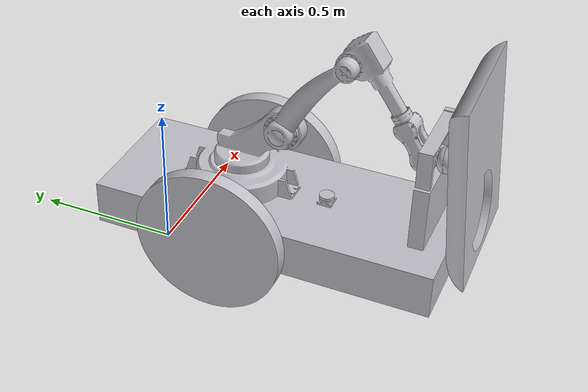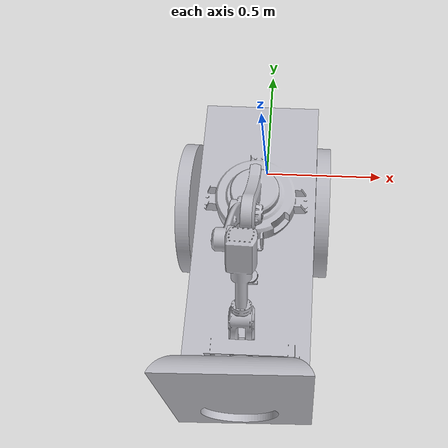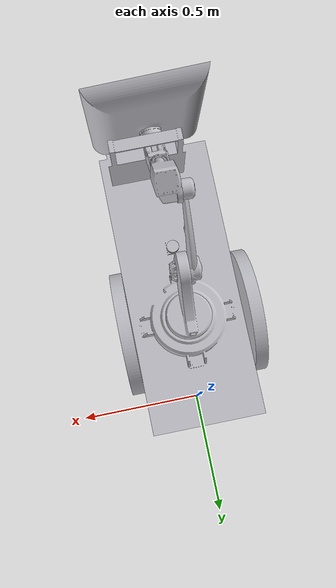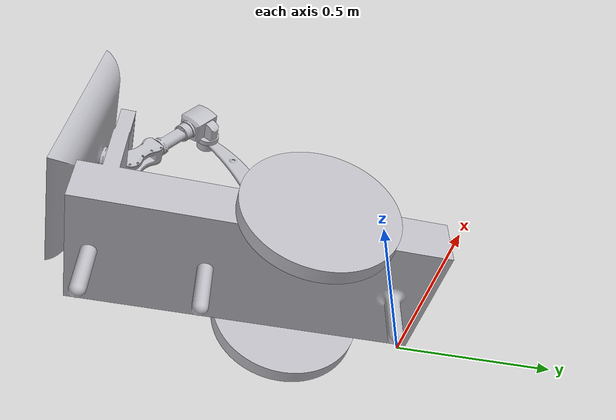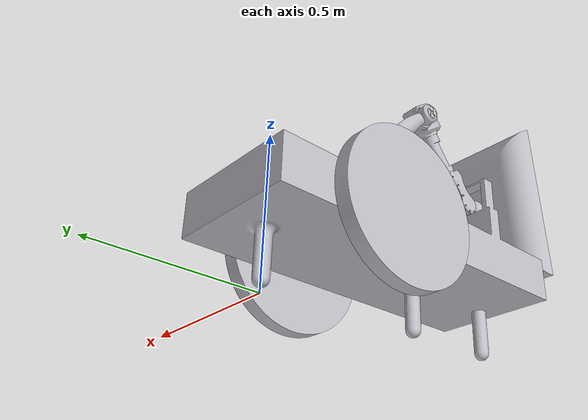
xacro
<?xml version="1.0" ?>
<robot name="Robotic" xmlns:xacro="http://www.ros.org/wiki/xacro">

<xacro:include filename="$(find Robotic_description)/urdf/materials.xacro" />
<xacro:include filename="$(find Robotic_description)/urdf/Robotic.trans" />
<xacro:include filename="$(find Robotic_description)/urdf/Robotic.gazebo" />
<link name="base_link">
  <inertial>
    <origin xyz="-0.007450355613238528 -0.4653602349973376 0.27586309139720855" rpy="0 0 0"/>
    <mass value="657.7876967232055"/>
    <inertia ixx="77.791713" iyy="13.429405" izz="85.67848" ixy="0.516986" iyz="2.23372" ixz="-0.199916"/>
  </inertial>
  <visual>
    <origin xyz="0 0 0" rpy="0 0 0"/>
    <geometry>
      <mesh filename="package://Robotic_description/meshes/base_link.stl" scale="0.001 0.001 0.001"/>
    </geometry>
    <material name="silver"/>
  </visual>
  <collision>
    <origin xyz="0 0 0" rpy="0 0 0"/>
    <geometry>
      <mesh filename="package://Robotic_description/meshes/base_link.stl" scale="0.001 0.001 0.001"/>
    </geometry>
  </collision>
</link>

<link name="hand_base_1">
  <inertial>
    <origin xyz="0.0010257516695020997 -0.05692153598390065 0.06290210488176279" rpy="0 0 0"/>
    <mass value="18.09836147401845"/>
    <inertia ixx="0.186656" iyy="0.093216" izz="0.127406" ixy="0.000853" iyz="0.071189" ixz="-0.001068"/>
  </inertial>
  <visual>
    <origin xyz="0.009269 0.297166 -0.446003" rpy="0 0 0"/>
    <geometry>
      <mesh filename="package://Robotic_description/meshes/hand_base_1.stl" scale="0.001 0.001 0.001"/>
    </geometry>
    <material name="silver"/>
  </visual>
  <collision>
    <origin xyz="0.009269 0.297166 -0.446003" rpy="0 0 0"/>
    <geometry>
      <mesh filename="package://Robotic_description/meshes/hand_base_1.stl" scale="0.001 0.001 0.001"/>
    </geometry>
  </collision>
</link>

<link name="arm1_1">
  <inertial>
    <origin xyz="-0.03758789593148462 -0.0737088482187292 0.1145706457365756" rpy="0 0 0"/>
    <mass value="6.899829498653839"/>
    <inertia ixx="0.134074" iyy="0.088007" izz="0.048106" ixy="-0.001112" iyz="0.060438" ixz="0.001108"/>
  </inertial>
  <visual>
    <origin xyz="0.013945 0.447093 -0.586003" rpy="0 0 0"/>
    <geometry>
      <mesh filename="package://Robotic_description/meshes/arm1_1.stl" scale="0.001 0.001 0.001"/>
    </geometry>
    <material name="silver"/>
  </visual>
  <collision>
    <origin xyz="0.013945 0.447093 -0.586003" rpy="0 0 0"/>
    <geometry>
      <mesh filename="package://Robotic_description/meshes/arm1_1.stl" scale="0.001 0.001 0.001"/>
    </geometry>
  </collision>
</link>

<link name="arm2_1">
  <inertial>
    <origin xyz="0.02340381159056437 -0.05299804220458271 -0.006510664663799903" rpy="0 0 0"/>
    <mass value="9.99270875492589"/>
    <inertia ixx="0.0514" iyy="0.034654" izz="0.027028" ixy="0.000569" iyz="-0.017218" ixz="-0.000493"/>
  </inertial>
  <visual>
    <origin xyz="0.020433 0.65511 -0.867405" rpy="0 0 0"/>
    <geometry>
      <mesh filename="package://Robotic_description/meshes/arm2_1.stl" scale="0.001 0.001 0.001"/>
    </geometry>
    <material name="silver"/>
  </visual>
  <collision>
    <origin xyz="0.020433 0.65511 -0.867405" rpy="0 0 0"/>
    <geometry>
      <mesh filename="package://Robotic_description/meshes/arm2_1.stl" scale="0.001 0.001 0.001"/>
    </geometry>
  </collision>
</link>

<link name="limb_1">
  <inertial>
    <origin xyz="-0.0017951382114320337 -0.05754333803716016 -0.0815636228719403" rpy="0 0 0"/>
    <mass value="4.896548707938915"/>
    <inertia ixx="0.015598" iyy="0.012813" izz="0.008678" ixy="-0.00015" iyz="-0.005806" ixz="-0.000136"/>
  </inertial>
  <visual>
    <origin xyz="-0.001751 0.80855 -0.729142" rpy="0 0 0"/>
    <geometry>
      <mesh filename="package://Robotic_description/meshes/limb_1.stl" scale="0.001 0.001 0.001"/>
    </geometry>
    <material name="silver"/>
  </visual>
  <collision>
    <origin xyz="-0.001751 0.80855 -0.729142" rpy="0 0 0"/>
    <geometry>
      <mesh filename="package://Robotic_description/meshes/limb_1.stl" scale="0.001 0.001 0.001"/>
    </geometry>
  </collision>
</link>

<link name="wrist_1">
  <inertial>
    <origin xyz="0.8805606266557462 0.2969658610954018 -0.4493313247733597" rpy="0 0 0"/>
    <mass value="123.51727145928325"/>
    <inertia ixx="3.192462" iyy="4.890144" izz="1.876446" ixy="-0.03157" iyz="-0.238187" ixz="0.01685"/>
  </inertial>
  <visual>
    <origin xyz="0.877584 1.337246 -1.070834" rpy="0 0 0"/>
    <geometry>
      <mesh filename="package://Robotic_description/meshes/wrist_1.stl" scale="0.001 0.001 0.001"/>
    </geometry>
    <material name="silver"/>
  </visual>
  <collision>
    <origin xyz="0.877584 1.337246 -1.070834" rpy="0 0 0"/>
    <geometry>
      <mesh filename="package://Robotic_description/meshes/wrist_1.stl" scale="0.001 0.001 0.001"/>
    </geometry>
  </collision>
</link>

<link name="right_wheel_1">
  <inertial>
    <origin xyz="-0.02499951052737509 -3.2177354841733674e-07 -1.7424353343509225e-07" rpy="0 0 0"/>
    <mass value="77.06719478337459"/>
    <inertia ixx="2.40835" iyy="1.220231" izz="1.220231" ixy="-0.0" iyz="-0.0" ixz="0.0"/>
  </inertial>
  <visual>
    <origin xyz="0.234269 0.297166 -0.267003" rpy="0 0 0"/>
    <geometry>
      <mesh filename="package://Robotic_description/meshes/right_wheel_1.stl" scale="0.001 0.001 0.001"/>
    </geometry>
    <material name="silver"/>
  </visual>
  <collision>
    <origin xyz="0.234269 0.297166 -0.267003" rpy="0 0 0"/>
    <geometry>
      <mesh filename="package://Robotic_description/meshes/right_wheel_1.stl" scale="0.001 0.001 0.001"/>
    </geometry>
  </collision>
</link>

<link name="left_wheel_1">
  <inertial>
    <origin xyz="0.02500048947262512 -3.2177354830631444e-07 -1.742435332685588e-07" rpy="0 0 0"/>
    <mass value="77.0671947833746"/>
    <inertia ixx="2.40835" iyy="1.220231" izz="1.220231" ixy="-0.0" iyz="-0.0" ixz="0.0"/>
  </inertial>
  <visual>
    <origin xyz="-0.215731 0.297166 -0.267003" rpy="0 0 0"/>
    <geometry>
      <mesh filename="package://Robotic_description/meshes/left_wheel_1.stl" scale="0.001 0.001 0.001"/>
    </geometry>
    <material name="silver"/>
  </visual>
  <collision>
    <origin xyz="-0.215731 0.297166 -0.267003" rpy="0 0 0"/>
    <geometry>
      <mesh filename="package://Robotic_description/meshes/left_wheel_1.stl" scale="0.001 0.001 0.001"/>
    </geometry>
  </collision>
</link>

<link name="lidar_1">
  <inertial>
    <origin xyz="4.894726252108877e-07 -3.217735482508033e-07 0.00499982575646668" rpy="0 0 0"/>
    <mass value="0.1541343895667492"/>
    <inertia ixx="2.5e-05" iyy="2.5e-05" izz="4.8e-05" ixy="-0.0" iyz="0.0" ixz="0.0"/>
  </inertial>
  <visual>
    <origin xyz="0.009269 0.597166 -0.362003" rpy="0 0 0"/>
    <geometry>
      <mesh filename="package://Robotic_description/meshes/lidar_1.stl" scale="0.001 0.001 0.001"/>
    </geometry>
    <material name="silver"/>
  </visual>
  <collision>
    <origin xyz="0.009269 0.597166 -0.362003" rpy="0 0 0"/>
    <geometry>
      <mesh filename="package://Robotic_description/meshes/lidar_1.stl" scale="0.001 0.001 0.001"/>
    </geometry>
  </collision>
</link>

<joint name="Revolute2" type="continuous">
  <origin xyz="-0.009269 -0.297166 0.446003" rpy="0 0 0"/>
  <parent link="base_link"/>
  <child link="hand_base_1"/>
  <axis xyz="0.0 0.0 1.0"/>
</joint>

<joint name="Revolute3" type="continuous">
  <origin xyz="-0.004676 -0.149927 0.14" rpy="0 0 0"/>
  <parent link="hand_base_1"/>
  <child link="arm1_1"/>
  <axis xyz="-0.999514 0.031174 -0.0"/>
</joint>

<joint name="Revolute4" type="continuous">
  <origin xyz="-0.006488 -0.208017 0.281402" rpy="0 0 0"/>
  <parent link="arm1_1"/>
  <child link="arm2_1"/>
  <axis xyz="0.999514 -0.031174 0.0"/>
</joint>

<joint name="Revolute5" type="continuous">
  <origin xyz="0.022184 -0.15344 -0.138263" rpy="0 0 0"/>
  <parent link="arm2_1"/>
  <child link="limb_1"/>
  <axis xyz="-0.017977 -0.576385 -0.81698"/>
</joint>

<joint name="Revolute6" type="continuous">
  <origin xyz="-0.879335 -0.528696 0.341692" rpy="0 0 0"/>
  <parent link="limb_1"/>
  <child link="wrist_1"/>
  <axis xyz="-0.999266 -0.017282 0.034181"/>
</joint>

<joint name="Revolute10" type="continuous">
  <origin xyz="-0.234269 -0.297166 0.267003" rpy="0 0 0"/>
  <parent link="base_link"/>
  <child link="right_wheel_1"/>
  <axis xyz="1.0 0.0 0.0"/>
</joint>

<joint name="Revolute11" type="continuous">
  <origin xyz="0.215731 -0.297166 0.267003" rpy="0 0 0"/>
  <parent link="base_link"/>
  <child link="left_wheel_1"/>
  <axis xyz="1.0 0.0 0.0"/>
</joint>

<joint name="Rigid12" type="fixed">
  <origin xyz="-0.009269 -0.597166 0.362003" rpy="0 0 0"/>
  <parent link="base_link"/>
  <child link="lidar_1"/>
</joint>

</robot>

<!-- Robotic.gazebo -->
<robot name="Robotic" xmlns:xacro="http://www.ros.org/wiki/xacro" >

<xacro:property name="body_color" value="Gazebo/Silver" />

<gazebo>
  <plugin name="control" filename="libgazebo_ros_control.so"/>
</gazebo>
<gazebo reference="base_link">
  <material>${body_color}</material>
  <mu1>0.05</mu1>
  <mu2>0.05</mu2>
  <selfCollide>true</selfCollide>
  <gravity>true</gravity>
</gazebo>

<gazebo reference="hand_base_1">
  <material>${body_color}</material>
  <mu1>0.2</mu1>
  <mu2>0.2</mu2>
  <selfCollide>false</selfCollide>
</gazebo>

<gazebo reference="arm1_1">
  <material>${body_color}</material>
  <mu1>0.2</mu1>
  <mu2>0.2</mu2>
  <selfCollide>false</selfCollide>
</gazebo>

<gazebo reference="arm2_1">
  <material>${body_color}</material>
  <mu1>0.2</mu1>
  <mu2>0.2</mu2>
  <selfCollide>false</selfCollide>
</gazebo>

<gazebo reference="limb_1">
  <material>${body_color}</material>
  <mu1>10</mu1>
  <mu2>10</mu2>
  <selfCollide>false</selfCollide>
</gazebo>

<gazebo reference="wrist_1">
  <material>${body_color}</material>
  <mu1>0</mu1>
  <mu2>0</mu2>
  <selfCollide>false</selfCollide>
</gazebo>

<gazebo reference="right_wheel_1">
  <material>${body_color}</material>
  <mu1>1500</mu1>
  <mu2>1500</mu2>
  <selfCollide>true</selfCollide>
</gazebo>

<gazebo reference="left_wheel_1">
  <material>${body_color}</material>
  <mu1>1500</mu1>
  <mu2>1500</mu2>
  <selfCollide>true</selfCollide>
</gazebo>

<gazebo reference="lidar_1">
  <material>${body_color}</material>
  <mu1>0.2</mu1>
  <mu2>0.2</mu2>
  <selfCollide>true</selfCollide>
</gazebo>
    <!-- 差動輪  -->
<gazebo>
  <plugin name="differential_drive_controller" filename="libgazebo_ros_diff_drive.so">

    <!-- Plugin update rate in Hz -->
    <updateRate>100</updateRate>

    <!-- Name of left joint, defaults to `left_joint` -->
    <leftJoint>Revolute11</leftJoint>

    <!-- Name of right joint, defaults to `right_joint` -->
    <rightJoint>Revolute10</rightJoint>

    <!-- The distance from the center of one wheel to the other, in meters, defaults to 0.34 m -->
    <wheelSeparation>0.45</wheelSeparation>

    <!-- Diameter of the wheels, in meters, defaults to 0.15 m -->
    <wheelDiameter>0.5</wheelDiameter>

    <!-- Wheel acceleration, in rad/s^2, defaults to 0.0 rad/s^2 -->
    <wheelAcceleration>1.0</wheelAcceleration>

    <!-- Maximum torque which the wheels can produce, in Nm, defaults to 5 Nm -->
    <wheelTorque>150</wheelTorque>

    <!-- Topic to receive geometry_msgs/Twist message commands, defaults to `cmd_vel` -->
    <commandTopic>cmd_vel</commandTopic>

    <!-- Topic to publish nav_msgs/Odometry messages, defaults to `odom` -->
    <odometryTopic>odom</odometryTopic>

    <!-- Odometry frame, defaults to `odom` -->
    <odometryFrame>odom</odometryFrame>

    <!-- Robot frame to calculate odometry from, defaults to `base_footprint` -->
    <robotBaseFrame>base_link</robotBaseFrame>

    <!-- Odometry source, 0 for ENCODER, 1 for WORLD, defaults to WORLD -->
    <odometrySource>1</odometrySource>

    <!-- Set to true to publish transforms for the wheel links, defaults to false -->
    <publishWheelTF>true</publishWheelTF>

    <!-- Set to true to publish transforms for the odometry, defaults to true -->
    <publishOdom>true</publishOdom>

    <!-- Set to true to publish sensor_msgs/JointState on /joint_states for the wheel joints, defaults to false -->
    <publishWheelJointState>true</publishWheelJointState>

    <!-- Set to true to swap right and left wheels, defaults to true -->
    <legacyMode>false</legacyMode>
  </plugin>
</gazebo>

</robot>
